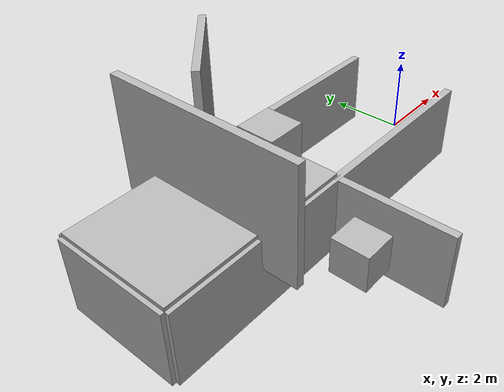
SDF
<sdf version="1.4">
 <world name="default">
  <scene><ambient>0.5 0.5 0.5 1</ambient><background>0.5 0.5 0.5 1</background><shadows>0</shadows></scene>
  <light name="directional_light_1" type="directional">
   <cast_shadows>0</cast_shadows>
   <pose>0 0 30 0.1 0.1 0</pose>
   <diffuse>1 1 1 1</diffuse>
   <specular>0.1 0.1 0.1 1</specular>
   <attenuation><range>300</range></attenuation>
   <direction>0.1 0.1 -1</direction>
  </light>
  <model name="wall_1">
   <static>true</static>
   <link name="wall_1_link">
    <pose>-5 -1.5 0.75 0 0 0</pose>
    <collision name="wall_1_collision"><geometry><box><size>10 0.2 2</size></box></geometry></collision>
    <visual name="wall_1_visual">
     <cast_shadows>false</cast_shadows>
     <geometry><box><size>10 0.2 2</size></box></geometry>
    </visual>
   </link>
   <damping>50</damping>
  </model>
  <model name="wall_2">
   <static>true</static>
   <link name="wall_2_link">
    <pose>-5 1.5 0.75 0 0 0</pose>
    <collision name="wall_2_collision"><geometry><box><size>10 0.2 2</size></box></geometry></collision>
    <visual name="wall_2_visual">
     <cast_shadows>false</cast_shadows>
     <geometry><box><size>10 0.2 2</size></box></geometry>
    </visual>
   </link>
   <damping>50</damping>
  </model>
  <model name="wall_3">
   <static>true</static>
   <link name="wall_3_link">
    <pose>-10 0 0.75 0 0 1.5708</pose>
    <collision name="wall_3_collision"><geometry><box><size>3 0.2 2</size></box></geometry></collision>
    <visual name="wall_3_visual">
     <cast_shadows>false</cast_shadows>
     <geometry><box><size>3 0.2 2</size></box></geometry>
    </visual>
   </link>
   <damping>50</damping>
  </model>
  <model name="wall_4">
   <static>true</static>
   <link name="wall_4_link">
    <pose>-5 -3 0.75 0 0 1.5708</pose>
    <collision name="wall_4_collision"><geometry><box><size>3 0.2 2</size></box></geometry></collision>
    <visual name="wall_4_visual">
     <cast_shadows>false</cast_shadows>
     <geometry><box><size>3 0.2 2</size></box></geometry>
    </visual>
   </link>
   <damping>50</damping>
  </model>
  <model name="wall_5">
   <static>true</static>
   <link name="wall_5_link">
    <pose>-5 2.6 1.75 0 0 0.7535</pose>
    <collision name="wall_5_collision"><geometry><box><size>3 0.2 4</size></box></geometry></collision>
    <visual name="wall_5_visual">
     <cast_shadows>false</cast_shadows>
     <geometry><box><size>3 0.2 4</size></box></geometry>
    </visual>
   </link>
   <damping>50</damping>
  </model>
  <model name="wall_6">
   <static>true</static>
   <link name="wall_6_link">
    <pose>-7.5 0 1.75 1.5708 0 0</pose>
    <collision name="wall_6_collision"><geometry><box><size>5 0.2 3</size></box></geometry></collision>
    <visual name="wall_6_visual">
     <cast_shadows>false</cast_shadows>
     <geometry><box><size>5 0.2 3</size></box></geometry>
    </visual>
   </link>
   <damping>50</damping>
  </model>
  <model name="wall_7">
   <static>true</static>
   <link name="wall_7_link">
    <pose>-7.5 0 2.5 0 0 1.5708</pose>
    <collision name="wall_7_collision"><geometry><box><size>3 0.2 3</size></box></geometry></collision>
    <visual name="wall_7_visual">
     <cast_shadows>false</cast_shadows>
     <geometry><box><size>5 0.2 3</size></box></geometry>
    </visual>
   </link>
   <damping>50</damping>
  </model>
  <model name="box_1">
   <static>true</static>
   <link name="box_1_link">
    <pose>-5.5 0 2.25 1.5708 0 0</pose>
    <collision name="box_1_collision"><geometry><box><size>1 1 1</size></box></geometry></collision>
    <visual name="box_1_visual">
     <cast_shadows>false</cast_shadows>
     <geometry><box><size>1 1 1</size></box></geometry>
    </visual>
   </link>
   <damping>20</damping>
  </model>
  <model name="box_2">
   <static>true</static>
   <link name="box_2_link">
    <pose>-6 3 0.5 1.5708 0 0</pose>
    <collision name="box_2_collision"><geometry><box><size>1 1 1</size></box></geometry></collision>
    <visual name="box_2_visual">
     <cast_shadows>false</cast_shadows>
     <geometry><box><size>1 1 1</size></box></geometry>
    </visual>
   </link>
   <damping>20</damping>
  </model>
  <model name="box_3">
   <static>true</static>
   <link name="box_3_link">
    <pose>-5.5 -2.6 0.5 1.5708 0 0</pose>
    <collision name="box_3_collision"><geometry><box><size>1 1 1</size></box></geometry></collision>
    <visual name="box_3_visual">
     <cast_shadows>false</cast_shadows>
     <geometry><box><size>1 1 1</size></box></geometry>
    </visual>
   </link>
   <damping>20</damping>
  </model>
  <model name="box_4">
   <static>true</static>
   <link name="box_4_link">
    <pose>-8 1 0.5 1.5708 0 0</pose>
    <collision name="box_4_collision"><geometry><box><size>1 1 1</size></box></geometry></collision>
    <visual name="box_4_visual">
     <cast_shadows>false</cast_shadows>
     <geometry><box><size>1 1 1</size></box></geometry>
    </visual>
   </link>
   <damping>20</damping>
  </model>
  <spherical_coordinates>
   <surface_model>EARTH_WGS84</surface_model>
   <latitude_deg>0</latitude_deg>
   <longitude_deg>0</longitude_deg>
   <elevation>0</elevation>
   <heading_deg>0</heading_deg>
  </spherical_coordinates>
 </world>
</sdf>
